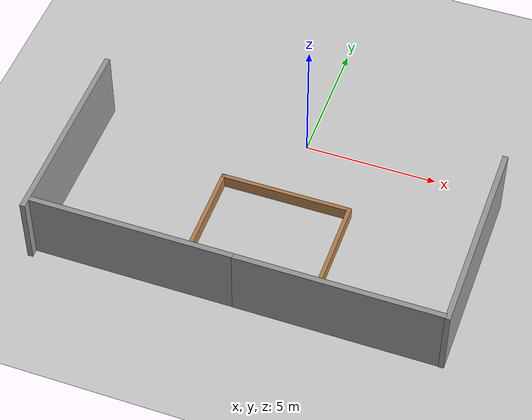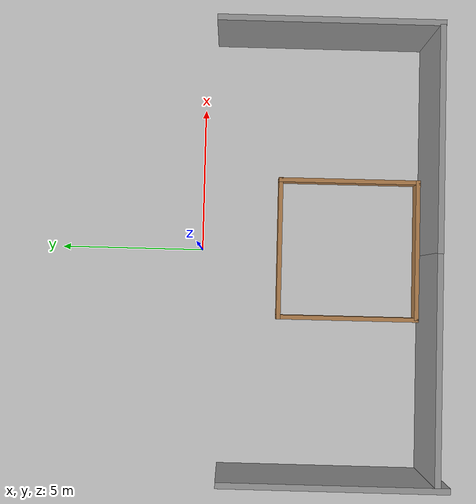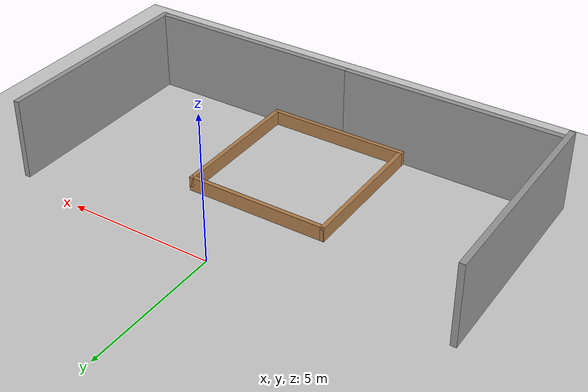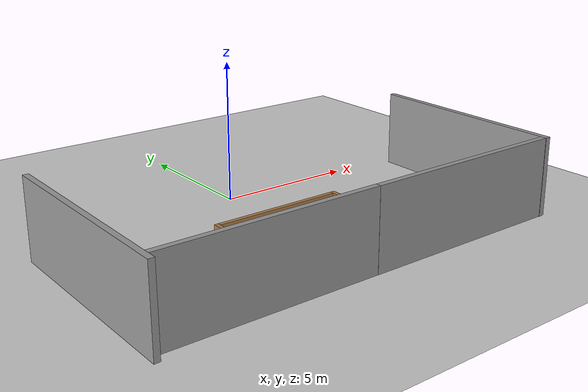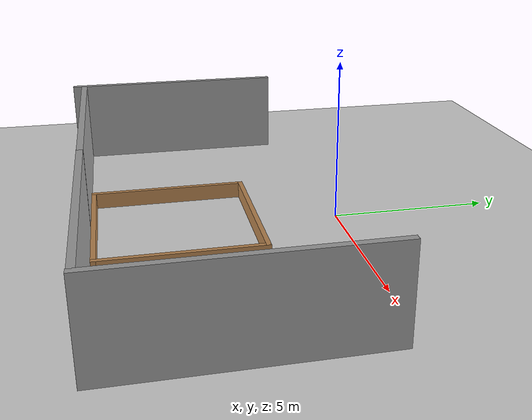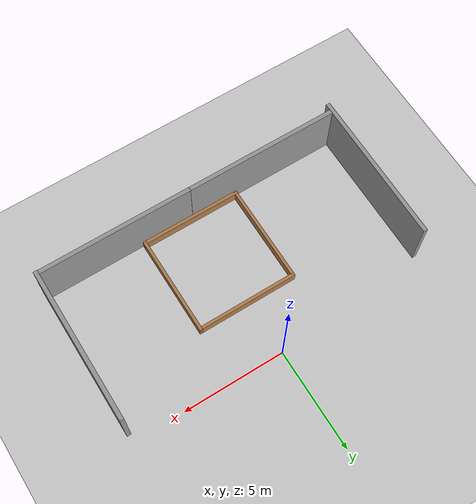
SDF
<sdf version="1.7">
 <world name="default">
  <model name="ground_plane">
   <static>1</static>
   <link name="link">
    <collision name="collision">
     <geometry><plane><normal>0 0 1</normal><size>100 100</size></plane></geometry>
     <surface><friction><ode><mu>100</mu><mu2>50</mu2></ode></friction></surface>
    </collision>
    <visual name="visual">
     <cast_shadows>0</cast_shadows>
     <geometry><plane><normal>0 0 1</normal><size>100 100</size></plane></geometry>
     <material>
      <script><uri>file://media/materials/scripts/gazebo.material</uri><name>Gazebo/Grey</name></script>
     </material>
    </visual>
   </link>
  </model>
  <light name="sun" type="directional">
   <pose>0 0 10 0 -0 0</pose>
   <diffuse>0.8 0.8 0.8 1</diffuse>
   <specular>0.2 0.2 0.2 1</specular>
   <attenuation>
    <range>1000</range>
    <constant>0.9</constant>
    <linear>0.01</linear>
    <quadratic>0.001</quadratic>
   </attenuation>
   <direction>-0.5 0.1 -0.9</direction>
   <spot><inner_angle>0</inner_angle><outer_angle>0</outer_angle><falloff>0</falloff></spot>
  </light>
  <scene><shadows>0</shadows><ambient>0.4 0.4 0.4 1</ambient><background>0.7 0.7 0.7 1</background></scene>
  <physics type="ode">
   <real_time_update_rate>1000</real_time_update_rate>
   <max_step_size>0.001</max_step_size>
   <real_time_factor>1</real_time_factor>
   <ode>
    <solver>
     <type>quick</type>
     <iters>150</iters>
     <precon_iters>0</precon_iters>
     <sor>1.4</sor>
     <use_dynamic_moi_rescaling>1</use_dynamic_moi_rescaling>
    </solver>
    <constraints>
     <cfm>1e-05</cfm>
     <erp>0.2</erp>
     <contact_max_correcting_vel>2000</contact_max_correcting_vel>
     <contact_surface_layer>0.01</contact_surface_layer>
    </constraints>
   </ode>
  </physics>
  <gravity>0 0 -9.8</gravity>
  <magnetic_field>6e-06 2.3e-05 -4.2e-05</magnetic_field>
  <atmosphere type="adiabatic"/>
  <audio><device>default</device></audio>
  <spherical_coordinates>
   <surface_model>EARTH_WGS84</surface_model>
   <latitude_deg>0</latitude_deg>
   <longitude_deg>0</longitude_deg>
   <elevation>0</elevation>
   <heading_deg>0</heading_deg>
  </spherical_coordinates>
  <model name="grey_wall">
   <static>1</static>
   <link name="link">
    <pose>0 0 1.4 0 -0 0</pose>
    <collision name="collision"><geometry><box><size>7.5 0.2 2.8</size></box></geometry></collision>
    <visual name="visual">
     <cast_shadows>0</cast_shadows>
     <geometry><box><size>7.5 0.2 2.8</size></box></geometry>
     <material>
      <script>
       <uri>model://grey_wall/materials/scripts</uri>
       <uri>model://grey_wall/materials/textures</uri>
       <name>vrc/grey_wall</name>
      </script>
     </material>
    </visual>
   </link>
   <pose>3.6716 -7.76563 0 0 -0 0</pose>
  </model>
  <model name="grey_wall_clone">
   <static>1</static>
   <link name="link">
    <pose>0 0 1.4 0 -0 0</pose>
    <collision name="collision"><geometry><box><size>7.5 0.2 2.8</size></box></geometry></collision>
    <visual name="visual">
     <cast_shadows>0</cast_shadows>
     <geometry><box><size>7.5 0.2 2.8</size></box></geometry>
     <material>
      <script>
       <uri>model://grey_wall/materials/scripts</uri>
       <uri>model://grey_wall/materials/textures</uri>
       <name>vrc/grey_wall</name>
      </script>
     </material>
    </visual>
   </link>
   <pose>-3.79977 -7.76176 0 0 -0 0</pose>
  </model>
  <model name="grey_wall_clone_0">
   <static>1</static>
   <link name="link">
    <pose>0 0 1.4 0 -0 0</pose>
    <collision name="collision"><geometry><box><size>7.5 0.2 2.8</size></box></geometry></collision>
    <visual name="visual">
     <cast_shadows>0</cast_shadows>
     <geometry><box><size>7.5 0.2 2.8</size></box></geometry>
     <material>
      <script>
       <uri>model://grey_wall/materials/scripts</uri>
       <uri>model://grey_wall/materials/textures</uri>
       <name>vrc/grey_wall</name>
      </script>
     </material>
    </visual>
   </link>
   <pose>7.48417 -4.13133 0 0 0 -1.57294</pose>
  </model>
  <model name="grey_wall_clone_0_clone">
   <static>1</static>
   <link name="link">
    <pose>0 0 1.4 0 -0 0</pose>
    <collision name="collision"><geometry><box><size>7.5 0.2 2.8</size></box></geometry></collision>
    <visual name="visual">
     <cast_shadows>0</cast_shadows>
     <geometry><box><size>7.5 0.2 2.8</size></box></geometry>
     <material>
      <script>
       <uri>model://grey_wall/materials/scripts</uri>
       <uri>model://grey_wall/materials/textures</uri>
       <name>vrc/grey_wall</name>
      </script>
     </material>
    </visual>
   </link>
   <pose>-7.63563 -4.41723 0 0 0 -1.57294</pose>
  </model>
  <model name="turtlebot3_square">
   <pose>0.104945 -5.13998 0 0 -0 0</pose>
   <link name="Wall_1">
    <collision name="Wall_1_Collision">
     <geometry><box><size>5 0.15 0.5</size></box></geometry>
     <pose>0 0 0.25 0 -0 0</pose>
    </collision>
    <visual name="Wall_1_Visual">
     <pose>0 0 0.25 0 -0 0</pose>
     <geometry><box><size>5 0.15 0.5</size></box></geometry>
     <material>
      <script><uri>file://media/materials/scripts/gazebo.material</uri><name>Gazebo/Wood</name></script>
      <ambient>1 1 1 1</ambient>
     </material>
    </visual>
    <pose>-2.425 0 0 0 -0 1.5708</pose>
   </link>
   <link name="Wall_2">
    <collision name="Wall_2_Collision">
     <geometry><box><size>5 0.15 0.5</size></box></geometry>
     <pose>0 0 0.25 0 -0 0</pose>
    </collision>
    <visual name="Wall_2_Visual">
     <pose>0 0 0.25 0 -0 0</pose>
     <geometry><box><size>5 0.15 0.5</size></box></geometry>
     <material>
      <script><uri>file://media/materials/scripts/gazebo.material</uri><name>Gazebo/Wood</name></script>
      <ambient>1 1 1 1</ambient>
     </material>
    </visual>
    <pose>0 2.425 0 0 -0 0</pose>
   </link>
   <link name="Wall_3">
    <collision name="Wall_3_Collision">
     <geometry><box><size>5 0.15 0.5</size></box></geometry>
     <pose>0 0 0.25 0 -0 0</pose>
    </collision>
    <visual name="Wall_3_Visual">
     <pose>0 0 0.25 0 -0 0</pose>
     <geometry><box><size>5 0.15 0.5</size></box></geometry>
     <material>
      <script><uri>file://media/materials/scripts/gazebo.material</uri><name>Gazebo/Wood</name></script>
      <ambient>1 1 1 1</ambient>
     </material>
    </visual>
    <pose>2.425 0 0 0 0 -1.5708</pose>
   </link>
   <link name="Wall_4">
    <collision name="Wall_4_Collision">
     <geometry><box><size>5 0.15 0.5</size></box></geometry>
     <pose>0 0 0.25 0 -0 0</pose>
    </collision>
    <visual name="Wall_4_Visual">
     <pose>0 0 0.25 0 -0 0</pose>
     <geometry><box><size>5 0.15 0.5</size></box></geometry>
     <material>
      <script><uri>file://media/materials/scripts/gazebo.material</uri><name>Gazebo/Wood</name></script>
      <ambient>1 1 1 1</ambient>
     </material>
    </visual>
    <pose>0 -2.425 0 0 -0 3.14159</pose>
   </link>
   <static>1</static>
  </model>
 </world>
</sdf>
